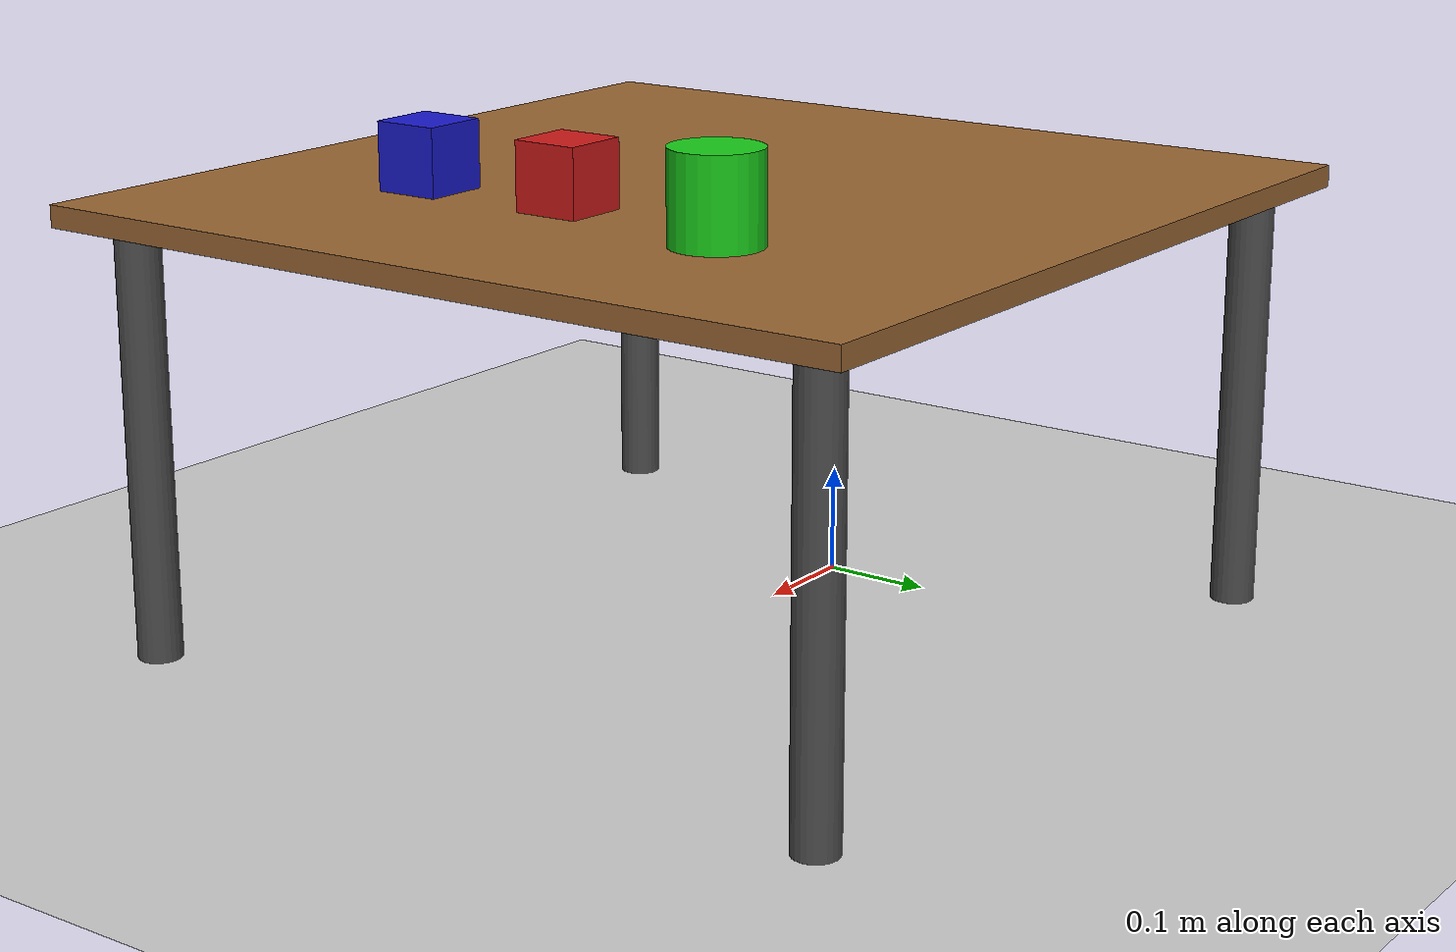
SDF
<?xml version="1.0" ?>
<sdf version="1.9">
  <world name="pick_place_world">
    <physics name="1ms" type="ignored">
      <max_step_size>0.001</max_step_size>
      <real_time_factor>1.0</real_time_factor>
    </physics>

    <plugin name="gz::sim::systems::Physics" filename="gz-sim-physics-system"/>
    <plugin name="gz::sim::systems::UserCommands" filename="gz-sim-user-commands-system"/>
    <plugin name="gz::sim::systems::SceneBroadcaster" filename="gz-sim-scene-broadcaster-system"/>
    <plugin name="gz::sim::systems::Contact" filename="gz-sim-contact-system"/>
    <plugin name="gz::sim::systems::Sensors" filename="gz-sim-sensors-system">
      <render_engine>ogre2</render_engine>
    </plugin>

    <light name="sun" type="directional">
      <cast_shadows>true</cast_shadows>
      <pose>0 0 10 0 0 0</pose>
      <diffuse>0.8 0.8 0.8 1</diffuse>
      <specular>0.2 0.2 0.2 1</specular>
      <direction>-0.5 0.1 -0.9</direction>
    </light>

    <model name="ground_plane">
      <static>true</static>
      <link name="link">
        <collision name="collision">
          <geometry>
            <plane>
              <normal>0 0 1</normal>
              <size>100 100</size>
            </plane>
          </geometry>
        </collision>
        <visual name="visual">
          <geometry>
            <plane>
              <normal>0 0 1</normal>
              <size>100 100</size>
            </plane>
          </geometry>
          <material>
            <ambient>0.8 0.8 0.8 1</ambient>
            <diffuse>0.8 0.8 0.8 1</diffuse>
          </material>
        </visual>
      </link>
    </model>

    <!-- Table in front of robot -->
    <model name="table">
      <static>true</static>
      <pose>0.2 0 0 0 0 0</pose>
      <link name="table_link">
        <collision name="collision">
          <pose>0 0 0.4 0 0 0</pose>
          <geometry>
            <box>
              <size>0.8 0.8 0.02</size>
            </box>
          </geometry>
        </collision>
        <visual name="visual">
          <pose>0 0 0.4 0 0 0</pose>
          <geometry>
            <box>
              <size>0.8 0.8 0.02</size>
            </box>
          </geometry>
          <material>
            <ambient>0.6 0.4 0.2 1</ambient>
            <diffuse>0.6 0.4 0.2 1</diffuse>
          </material>
        </visual>
        <!-- Legs -->
        <visual name="leg1">
          <pose>0.35 0.35 0.2 0 0 0</pose>
          <geometry><cylinder><radius>0.02</radius><length>0.4</length></cylinder></geometry>
          <material><ambient>0.3 0.3 0.3 1</ambient></material>
        </visual>
        <collision name="leg1_col">
          <pose>0.35 0.35 0.2 0 0 0</pose>
          <geometry><cylinder><radius>0.02</radius><length>0.4</length></cylinder></geometry>
        </collision>
        <visual name="leg2">
          <pose>-0.35 0.35 0.2 0 0 0</pose>
          <geometry><cylinder><radius>0.02</radius><length>0.4</length></cylinder></geometry>
          <material><ambient>0.3 0.3 0.3 1</ambient></material>
        </visual>
        <collision name="leg2_col">
          <pose>-0.35 0.35 0.2 0 0 0</pose>
          <geometry><cylinder><radius>0.02</radius><length>0.4</length></cylinder></geometry>
        </collision>
        <visual name="leg3">
          <pose>0.35 -0.35 0.2 0 0 0</pose>
          <geometry><cylinder><radius>0.02</radius><length>0.4</length></cylinder></geometry>
          <material><ambient>0.3 0.3 0.3 1</ambient></material>
        </visual>
        <collision name="leg3_col">
          <pose>0.35 -0.35 0.2 0 0 0</pose>
          <geometry><cylinder><radius>0.02</radius><length>0.4</length></cylinder></geometry>
        </collision>
        <visual name="leg4">
          <pose>-0.35 -0.35 0.2 0 0 0</pose>
          <geometry><cylinder><radius>0.02</radius><length>0.4</length></cylinder></geometry>
          <material><ambient>0.3 0.3 0.3 1</ambient></material>
        </visual>
        <collision name="leg4_col">
          <pose>-0.35 -0.35 0.2 0 0 0</pose>
          <geometry><cylinder><radius>0.02</radius><length>0.4</length></cylinder></geometry>
        </collision>
      </link>
    </model>

    <!-- Red Box (larger: 6cm x 6cm x 6cm) -->
    <model name="red_box">
      <pose>0.4 0 0.45 0 0 0</pose>
      <link name="link">
        <inertial>
          <mass>0.1</mass>
          <inertia>
            <ixx>0.0001</ixx><ixy>0</ixy><ixz>0</ixz>
            <iyy>0.0001</iyy><iyz>0</iyz><izz>0.0001</izz>
          </inertia>
        </inertial>
        <collision name="collision">
          <geometry><box><size>0.06 0.06 0.06</size></box></geometry>
          <surface>
            <friction><ode><mu>1.0</mu><mu2>1.0</mu2></ode></friction>
          </surface>
        </collision>
        <visual name="visual">
          <geometry><box><size>0.06 0.06 0.06</size></box></geometry>
          <material>
            <ambient>0.8 0.1 0.1 1</ambient>
            <diffuse>0.8 0.1 0.1 1</diffuse>
          </material>
        </visual>
      </link>
    </model>

    <!-- Green Cylinder (larger: radius 3cm, height 8cm) -->
    <model name="green_cylinder">
      <pose>0.4 0.15 0.45 0 0 0</pose>
      <link name="link">
        <inertial>
          <mass>0.1</mass>
          <inertia>
            <ixx>0.0001</ixx><ixy>0</ixy><ixz>0</ixz>
            <iyy>0.0001</iyy><iyz>0</iyz><izz>0.0001</izz>
          </inertia>
        </inertial>
        <collision name="collision">
          <geometry><cylinder><radius>0.04</radius><length>0.08</length></cylinder></geometry>
          <surface>
            <friction><ode><mu>1.0</mu><mu2>1.0</mu2></ode></friction>
          </surface>
        </collision>
        <visual name="visual">
          <geometry><cylinder><radius>0.04</radius><length>0.08</length></cylinder></geometry>
          <material>
            <ambient>0.1 0.8 0.1 1</ambient>
            <diffuse>0.1 0.8 0.1 1</diffuse>
          </material>
        </visual>
      </link>
    </model>

    <!-- Blue Box (larger: 6cm x 6cm x 6cm) -->
    <model name="blue_box">
      <pose>0.4 -0.15 0.45 0 0 0</pose>
      <link name="link">
        <inertial>
          <mass>0.1</mass>
          <inertia>
            <ixx>0.0001</ixx><ixy>0</ixy><ixz>0</ixz>
            <iyy>0.0001</iyy><iyz>0</iyz><izz>0.0001</izz>
          </inertia>
        </inertial>
        <collision name="collision">
          <geometry><box><size>0.06 0.06 0.06</size></box></geometry>
          <surface>
            <friction><ode><mu>1.0</mu><mu2>1.0</mu2></ode></friction>
          </surface>
        </collision>
        <visual name="visual">
          <geometry><box><size>0.06 0.06 0.06</size></box></geometry>
          <material>
            <ambient>0.1 0.1 0.8 1</ambient>
            <diffuse>0.1 0.1 0.8 1</diffuse>
          </material>
        </visual>
      </link>
    </model>

  </world>
</sdf>
